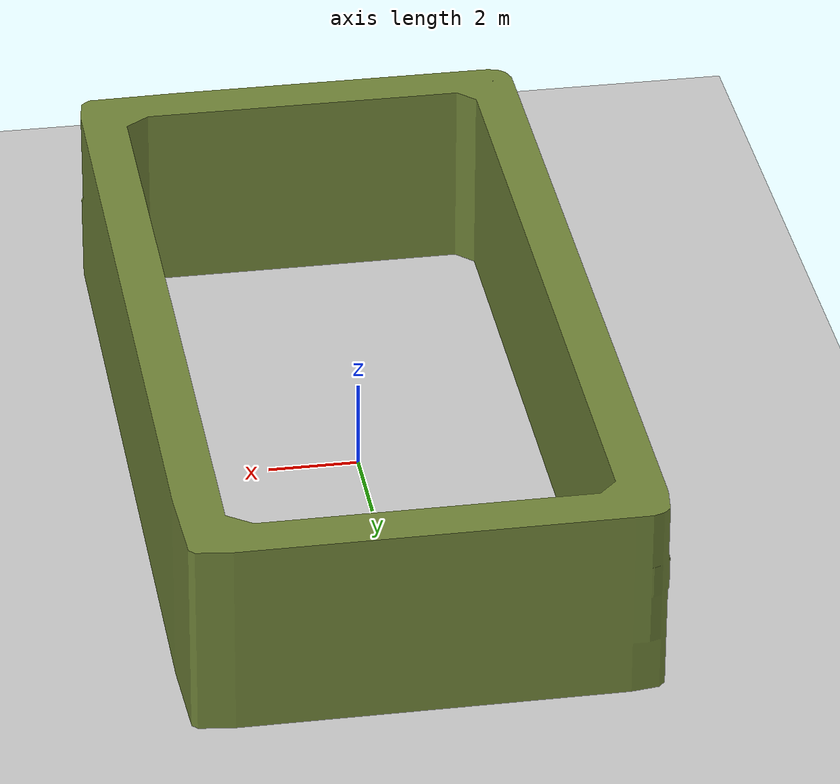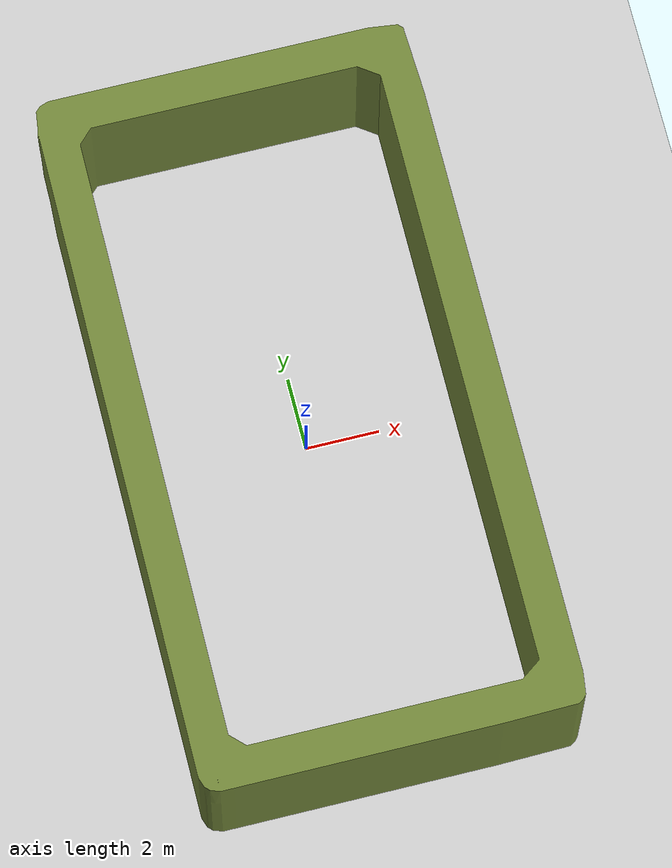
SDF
<?xml version="1.0" ?>
<sdf version="1.6">
  <world name="default">
    <atmosphere type="adiabatic"/>
    <wind>
      <linear_velocity>0 0 0</linear_velocity>
    </wind>
    <physics name="default_physics" default="1" type="ode">
      <max_step_size>0.001</max_step_size>
      <real_time_factor>1.0</real_time_factor>
      <real_time_update_rate>1000.0</real_time_update_rate>
      <max_contacts>20</max_contacts>
      <ode>
        <solver>
          <min_step_size>0.0001</min_step_size>
          <iters>50</iters>
          <sor>1.3</sor>
          <type>quick</type>
          <precon_iters>0</precon_iters>
          <use_dynamic_moi_rescaling>0</use_dynamic_moi_rescaling>
          <friction_model>pyramid_model</friction_model>
        </solver>
        <constraints>
          <cfm>0.0</cfm>
          <erp>0.2</erp>
          <contact_surface_layer>0.001</contact_surface_layer>
          <contact_max_correcting_vel>100.0</contact_max_correcting_vel>
        </constraints>
      </ode>
    </physics>
    <gravity>0 0 -9.8</gravity>
    <include>
      <uri>model://pcg_room_000_walls</uri>
      <pose frame="">0 0 2.17 0 -0 0</pose>
      <name>pcg_room_000_walls</name>
      <static>1</static>
    </include>
    <include>
      <uri>model://ground_plane</uri>
      <pose frame="">0 0 0 0 -0 0</pose>
      <name>ground_plane</name>
      <static>1</static>
    </include>
    <include>
      <uri>model://ground_plane</uri>
    </include>
    <include>
      <uri>model://sun</uri>
    </include>
  </world>
</sdf>

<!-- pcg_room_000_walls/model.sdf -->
<sdf version="1.6">
  <model name="pcg_room_000_walls">
    <pose frame="">0 0 2.17 0 -0 0</pose>
    <static>1</static>
    <self_collide>0</self_collide>
    <allow_auto_disable>0</allow_auto_disable>
    <link name="mesh">
      <kinematic>0</kinematic>
      <gravity>1</gravity>
      <self_collide>0</self_collide>
      <collision name="collision">
        <geometry>
          <mesh>
            <uri>file:///home/ross/Projects/AIIA/risk_metric_maps/outputs/2022-08-02/12-41-19/pcg_room_000_walls/meshes/fHMPZsDOAm.obj</uri>
            <scale>1 1 1</scale>
          </mesh>
        </geometry>
        <pose frame="">-0 -0 -2.17 0 -0 0</pose>
        <max_contacts>20</max_contacts>
      </collision>
      <visual name="visual">
        <geometry>
          <mesh>
            <uri>file:///home/ross/Projects/AIIA/risk_metric_maps/outputs/2022-08-02/12-41-19/pcg_room_000_walls/meshes/evJtKDQxVO.obj</uri>
            <scale>1 1 1</scale>
          </mesh>
        </geometry>
        <material>
          <ambient>0.447059 0.52549 0.223529 1</ambient>
          <diffuse>0.4470588235294118 0.5254901960784314 0.2235294117647059 1</diffuse>
        </material>
        <pose frame="">-0 -0 -2.17 0 -0 0</pose>
        <cast_shadows>1</cast_shadows>
        <transparency>0.0</transparency>
      </visual>
      <pose frame="">0 0 0 0 -0 0</pose>
    </link>
  </model>
</sdf>
